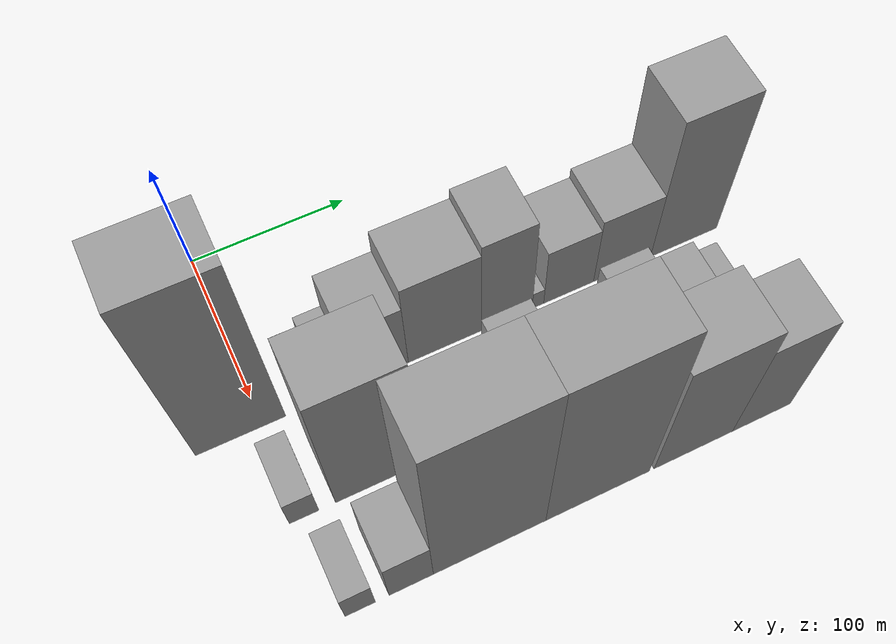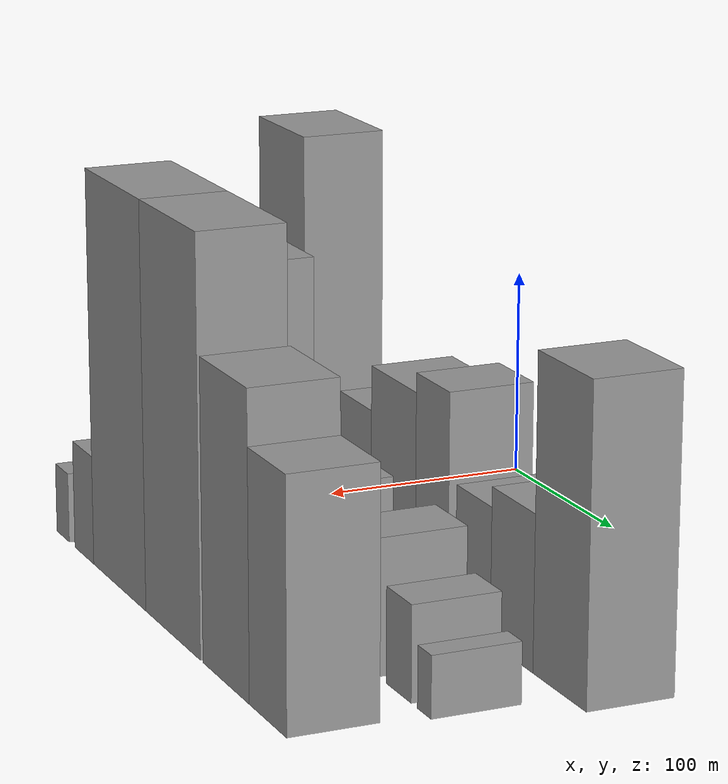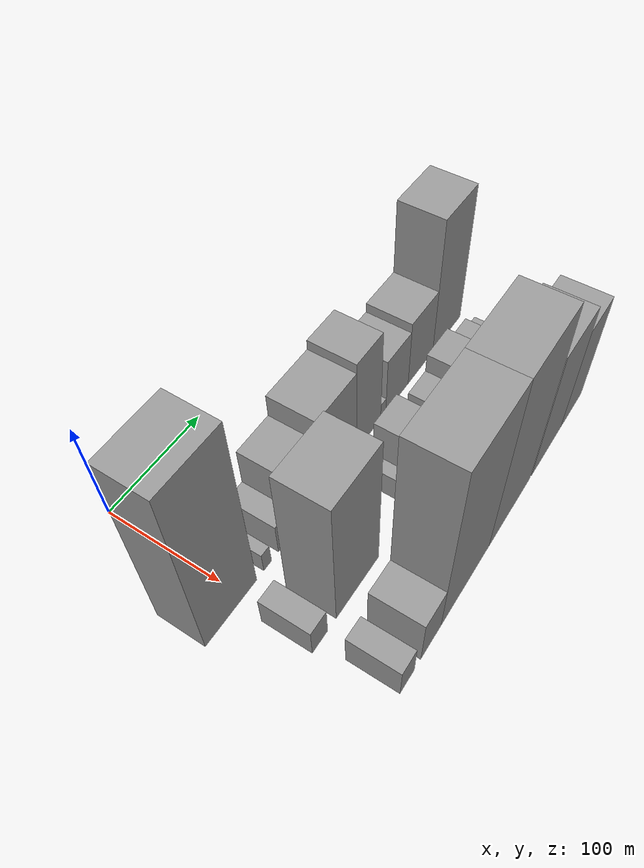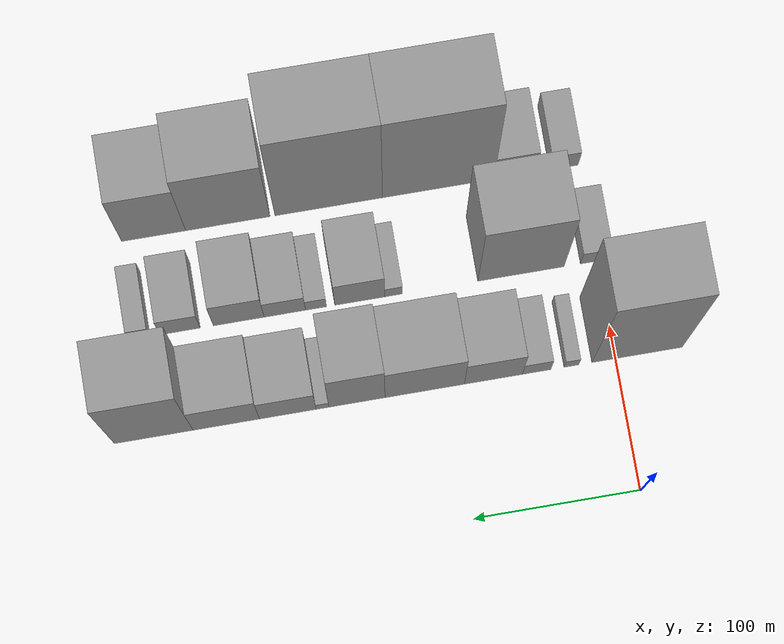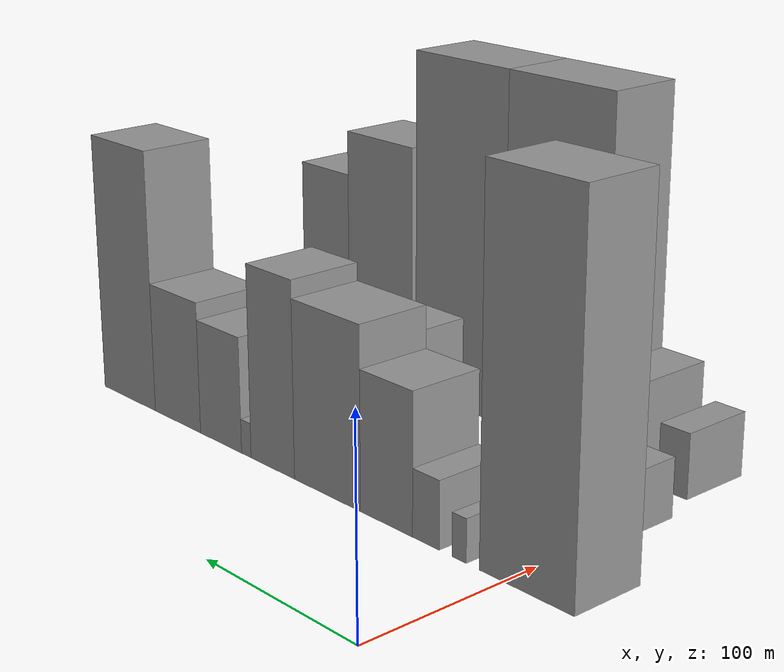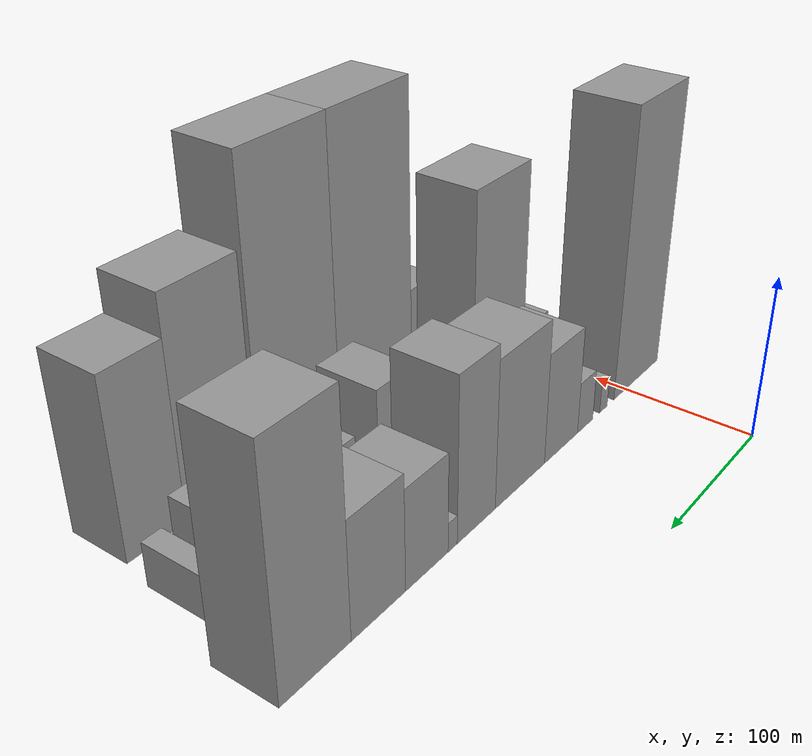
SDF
<sdf version="1.6">
 <world name="default">
  <model name="building_16">
   <static>1</static>
   <pose>100.0000 -13.0072 0 0.000000 0.000000 0.000000</pose>
   <link name="link">
    <pose>0 0 90.00 0 0 0</pose>
    <collision name="collision"><geometry><box><size>40.0000 54.8522 180.0000</size></box></geometry></collision>
    <visual name="visual">
     <cast_shadows>0</cast_shadows>
     <geometry><box><size>40.0000 54.8522 180.0000</size></box></geometry>
     <material>
      <script>
       <uri>model://grey_wall/materials/scripts</uri>
       <uri>model://grey_wall/materials/textures</uri>
       <name>vrc/grey_wall</name>
      </script>
     </material>
    </visual>
   </link>
  </model>
  <model name="building_17">
   <static>1</static>
   <pose>100.0000 26.8543 0 0.000000 0.000000 0.000000</pose>
   <link name="link">
    <pose>0 0 10.50 0 0 0</pose>
    <collision name="collision"><geometry><box><size>40.0000 8.8710 21.0000</size></box></geometry></collision>
    <visual name="visual">
     <cast_shadows>0</cast_shadows>
     <geometry><box><size>40.0000 8.8710 21.0000</size></box></geometry>
     <material>
      <script>
       <uri>model://grey_wall/materials/scripts</uri>
       <uri>model://grey_wall/materials/textures</uri>
       <name>vrc/grey_wall</name>
      </script>
     </material>
    </visual>
   </link>
  </model>
  <model name="building_18">
   <static>1</static>
   <pose>100.0000 47.9079 0 0.000000 0.000000 0.000000</pose>
   <link name="link">
    <pose>0 0 16.50 0 0 0</pose>
    <collision name="collision"><geometry><box><size>40.0000 17.2362 33.0000</size></box></geometry></collision>
    <visual name="visual">
     <cast_shadows>0</cast_shadows>
     <geometry><box><size>40.0000 17.2362 33.0000</size></box></geometry>
     <material>
      <script>
       <uri>model://grey_wall/materials/scripts</uri>
       <uri>model://grey_wall/materials/textures</uri>
       <name>vrc/grey_wall</name>
      </script>
     </material>
    </visual>
   </link>
  </model>
  <model name="building_19">
   <static>1</static>
   <pose>100.0000 74.0982 0 0.000000 0.000000 0.000000</pose>
   <link name="link">
    <pose>0 0 34.50 0 0 0</pose>
    <collision name="collision"><geometry><box><size>40.0000 35.1444 69.0000</size></box></geometry></collision>
    <visual name="visual">
     <cast_shadows>0</cast_shadows>
     <geometry><box><size>40.0000 35.1444 69.0000</size></box></geometry>
     <material>
      <script>
       <uri>model://grey_wall/materials/scripts</uri>
       <uri>model://grey_wall/materials/textures</uri>
       <name>vrc/grey_wall</name>
      </script>
     </material>
    </visual>
   </link>
  </model>
  <model name="building_20">
   <static>1</static>
   <pose>100.0000 115.5759 0 0.000000 0.000000 0.000000</pose>
   <link name="link">
    <pose>0 0 45.00 0 0 0</pose>
    <collision name="collision"><geometry><box><size>40.0000 47.8111 90.0000</size></box></geometry></collision>
    <visual name="visual">
     <cast_shadows>0</cast_shadows>
     <geometry><box><size>40.0000 47.8111 90.0000</size></box></geometry>
     <material>
      <script>
       <uri>model://grey_wall/materials/scripts</uri>
       <uri>model://grey_wall/materials/textures</uri>
       <name>vrc/grey_wall</name>
      </script>
     </material>
    </visual>
   </link>
  </model>
  <model name="building_21">
   <static>1</static>
   <pose>100.0000 156.3765 0 0.000000 0.000000 0.000000</pose>
   <link name="link">
    <pose>0 0 49.50 0 0 0</pose>
    <collision name="collision"><geometry><box><size>40.0000 33.7900 99.0000</size></box></geometry></collision>
    <visual name="visual">
     <cast_shadows>0</cast_shadows>
     <geometry><box><size>40.0000 33.7900 99.0000</size></box></geometry>
     <material>
      <script>
       <uri>model://grey_wall/materials/scripts</uri>
       <uri>model://grey_wall/materials/textures</uri>
       <name>vrc/grey_wall</name>
      </script>
     </material>
    </visual>
   </link>
  </model>
  <model name="building_22">
   <static>1</static>
   <pose>100.0000 177.1312 0 0.000000 0.000000 0.000000</pose>
   <link name="link">
    <pose>0 0 9.00 0 0 0</pose>
    <collision name="collision"><geometry><box><size>40.0000 7.7195 18.0000</size></box></geometry></collision>
    <visual name="visual">
     <cast_shadows>0</cast_shadows>
     <geometry><box><size>40.0000 7.7195 18.0000</size></box></geometry>
     <material>
      <script>
       <uri>model://grey_wall/materials/scripts</uri>
       <uri>model://grey_wall/materials/textures</uri>
       <name>vrc/grey_wall</name>
      </script>
     </material>
    </visual>
   </link>
  </model>
  <model name="building_23">
   <static>1</static>
   <pose>100.0000 198.0240 0 0.000000 0.000000 0.000000</pose>
   <link name="link">
    <pose>0 0 30.00 0 0 0</pose>
    <collision name="collision"><geometry><box><size>40.0000 34.0659 60.0000</size></box></geometry></collision>
    <visual name="visual">
     <cast_shadows>0</cast_shadows>
     <geometry><box><size>40.0000 34.0659 60.0000</size></box></geometry>
     <material>
      <script>
       <uri>model://grey_wall/materials/scripts</uri>
       <uri>model://grey_wall/materials/textures</uri>
       <name>vrc/grey_wall</name>
      </script>
     </material>
    </visual>
   </link>
  </model>
  <model name="building_24">
   <static>1</static>
   <pose>100.0000 234.9716 0 0.000000 0.000000 0.000000</pose>
   <link name="link">
    <pose>0 0 34.50 0 0 0</pose>
    <collision name="collision"><geometry><box><size>40.0000 39.8295 69.0000</size></box></geometry></collision>
    <visual name="visual">
     <cast_shadows>0</cast_shadows>
     <geometry><box><size>40.0000 39.8295 69.0000</size></box></geometry>
     <material>
      <script>
       <uri>model://grey_wall/materials/scripts</uri>
       <uri>model://grey_wall/materials/textures</uri>
       <name>vrc/grey_wall</name>
      </script>
     </material>
    </visual>
   </link>
  </model>
  <model name="building_25">
   <static>1</static>
   <pose>100.0000 278.4877 0 0.000000 0.000000 0.000000</pose>
   <link name="link">
    <pose>0 0 69.00 0 0 0</pose>
    <collision name="collision"><geometry><box><size>40.0000 47.2026 138.0000</size></box></geometry></collision>
    <visual name="visual">
     <cast_shadows>0</cast_shadows>
     <geometry><box><size>40.0000 47.2026 138.0000</size></box></geometry>
     <material>
      <script>
       <uri>model://grey_wall/materials/scripts</uri>
       <uri>model://grey_wall/materials/textures</uri>
       <name>vrc/grey_wall</name>
      </script>
     </material>
    </visual>
   </link>
  </model>
  <model name="building_52">
   <static>1</static>
   <pose>160.0000 1.5211 0 0.000000 0.000000 0.000000</pose>
   <link name="link">
    <pose>0 0 15.00 0 0 0</pose>
    <collision name="collision"><geometry><box><size>40.0000 17.5326 30.0000</size></box></geometry></collision>
    <visual name="visual">
     <cast_shadows>0</cast_shadows>
     <geometry><box><size>40.0000 17.5326 30.0000</size></box></geometry>
     <material>
      <script>
       <uri>model://grey_wall/materials/scripts</uri>
       <uri>model://grey_wall/materials/textures</uri>
       <name>vrc/grey_wall</name>
      </script>
     </material>
    </visual>
   </link>
  </model>
  <model name="building_53">
   <static>1</static>
   <pose>160.0000 46.5620 0 0.000000 0.000000 0.000000</pose>
   <link name="link">
    <pose>0 0 69.00 0 0 0</pose>
    <collision name="collision"><geometry><box><size>40.0000 52.5492 138.0000</size></box></geometry></collision>
    <visual name="visual">
     <cast_shadows>0</cast_shadows>
     <geometry><box><size>40.0000 52.5492 138.0000</size></box></geometry>
     <material>
      <script>
       <uri>model://grey_wall/materials/scripts</uri>
       <uri>model://grey_wall/materials/textures</uri>
       <name>vrc/grey_wall</name>
      </script>
     </material>
    </visual>
   </link>
  </model>
  <model name="building_54">
   <static>1</static>
   <pose>160.0000 124.0687 0 0.000000 0.000000 0.000000</pose>
   <link name="link">
    <pose>0 0 12.00 0 0 0</pose>
    <collision name="collision"><geometry><box><size>40.0000 10.8214 24.0000</size></box></geometry></collision>
    <visual name="visual">
     <cast_shadows>0</cast_shadows>
     <geometry><box><size>40.0000 10.8214 24.0000</size></box></geometry>
     <material>
      <script>
       <uri>model://grey_wall/materials/scripts</uri>
       <uri>model://grey_wall/materials/textures</uri>
       <name>vrc/grey_wall</name>
      </script>
     </material>
    </visual>
   </link>
  </model>
  <model name="building_55">
   <static>1</static>
   <pose>160.0000 144.5876 0 0.000000 0.000000 0.000000</pose>
   <link name="link">
    <pose>0 0 30.00 0 0 0</pose>
    <collision name="collision"><geometry><box><size>40.0000 30.2163 60.0000</size></box></geometry></collision>
    <visual name="visual">
     <cast_shadows>0</cast_shadows>
     <geometry><box><size>40.0000 30.2163 60.0000</size></box></geometry>
     <material>
      <script>
       <uri>model://grey_wall/materials/scripts</uri>
       <uri>model://grey_wall/materials/textures</uri>
       <name>vrc/grey_wall</name>
      </script>
     </material>
    </visual>
   </link>
  </model>
  <model name="building_56">
   <static>1</static>
   <pose>160.0000 171.0431 0 0.000000 0.000000 0.000000</pose>
   <link name="link">
    <pose>0 0 13.50 0 0 0</pose>
    <collision name="collision"><geometry><box><size>40.0000 12.6948 27.0000</size></box></geometry></collision>
    <visual name="visual">
     <cast_shadows>0</cast_shadows>
     <geometry><box><size>40.0000 12.6948 27.0000</size></box></geometry>
     <material>
      <script>
       <uri>model://grey_wall/materials/scripts</uri>
       <uri>model://grey_wall/materials/textures</uri>
       <name>vrc/grey_wall</name>
      </script>
     </material>
    </visual>
   </link>
  </model>
  <model name="building_57">
   <static>1</static>
   <pose>160.0000 189.9268 0 0.000000 0.000000 0.000000</pose>
   <link name="link">
    <pose>0 0 21.00 0 0 0</pose>
    <collision name="collision"><geometry><box><size>40.0000 25.0726 42.0000</size></box></geometry></collision>
    <visual name="visual">
     <cast_shadows>0</cast_shadows>
     <geometry><box><size>40.0000 25.0726 42.0000</size></box></geometry>
     <material>
      <script>
       <uri>model://grey_wall/materials/scripts</uri>
       <uri>model://grey_wall/materials/textures</uri>
       <name>vrc/grey_wall</name>
      </script>
     </material>
    </visual>
   </link>
  </model>
  <model name="building_58">
   <static>1</static>
   <pose>160.0000 217.8167 0 0.000000 0.000000 0.000000</pose>
   <link name="link">
    <pose>0 0 30.00 0 0 0</pose>
    <collision name="collision"><geometry><box><size>40.0000 30.7073 60.0000</size></box></geometry></collision>
    <visual name="visual">
     <cast_shadows>0</cast_shadows>
     <geometry><box><size>40.0000 30.7073 60.0000</size></box></geometry>
     <material>
      <script>
       <uri>model://grey_wall/materials/scripts</uri>
       <uri>model://grey_wall/materials/textures</uri>
       <name>vrc/grey_wall</name>
      </script>
     </material>
    </visual>
   </link>
  </model>
  <model name="building_59">
   <static>1</static>
   <pose>160.0000 253.3060 0 0.000000 0.000000 0.000000</pose>
   <link name="link">
    <pose>0 0 21.00 0 0 0</pose>
    <collision name="collision"><geometry><box><size>40.0000 24.2714 42.0000</size></box></geometry></collision>
    <visual name="visual">
     <cast_shadows>0</cast_shadows>
     <geometry><box><size>40.0000 24.2714 42.0000</size></box></geometry>
     <material>
      <script>
       <uri>model://grey_wall/materials/scripts</uri>
       <uri>model://grey_wall/materials/textures</uri>
       <name>vrc/grey_wall</name>
      </script>
     </material>
    </visual>
   </link>
  </model>
  <model name="building_60">
   <static>1</static>
   <pose>160.0000 277.8568 0 0.000000 0.000000 0.000000</pose>
   <link name="link">
    <pose>0 0 13.50 0 0 0</pose>
    <collision name="collision"><geometry><box><size>40.0000 12.8302 27.0000</size></box></geometry></collision>
    <visual name="visual">
     <cast_shadows>0</cast_shadows>
     <geometry><box><size>40.0000 12.8302 27.0000</size></box></geometry>
     <material>
      <script>
       <uri>model://grey_wall/materials/scripts</uri>
       <uri>model://grey_wall/materials/textures</uri>
       <name>vrc/grey_wall</name>
      </script>
     </material>
    </visual>
   </link>
  </model>
  <model name="building_88">
   <static>1</static>
   <pose>220.0000 9.4413 0 0.000000 0.000000 0.000000</pose>
   <link name="link">
    <pose>0 0 16.50 0 0 0</pose>
    <collision name="collision"><geometry><box><size>40.0000 17.5889 33.0000</size></box></geometry></collision>
    <visual name="visual">
     <cast_shadows>0</cast_shadows>
     <geometry><box><size>40.0000 17.5889 33.0000</size></box></geometry>
     <material>
      <script>
       <uri>model://grey_wall/materials/scripts</uri>
       <uri>model://grey_wall/materials/textures</uri>
       <name>vrc/grey_wall</name>
      </script>
     </material>
    </visual>
   </link>
  </model>
  <model name="building_89">
   <static>1</static>
   <pose>220.0000 39.3059 0 0.000000 0.000000 0.000000</pose>
   <link name="link">
    <pose>0 0 25.50 0 0 0</pose>
    <collision name="collision"><geometry><box><size>40.0000 26.1405 51.0000</size></box></geometry></collision>
    <visual name="visual">
     <cast_shadows>0</cast_shadows>
     <geometry><box><size>40.0000 26.1405 51.0000</size></box></geometry>
     <material>
      <script>
       <uri>model://grey_wall/materials/scripts</uri>
       <uri>model://grey_wall/materials/textures</uri>
       <name>vrc/grey_wall</name>
      </script>
     </material>
    </visual>
   </link>
  </model>
  <model name="building_90">
   <static>1</static>
   <pose>220.0000 86.4786 0 0.000000 0.000000 0.000000</pose>
   <link name="link">
    <pose>0 0 91.50 0 0 0</pose>
    <collision name="collision"><geometry><box><size>40.0000 68.2048 183.0000</size></box></geometry></collision>
    <visual name="visual">
     <cast_shadows>0</cast_shadows>
     <geometry><box><size>40.0000 68.2048 183.0000</size></box></geometry>
     <material>
      <script>
       <uri>model://grey_wall/materials/scripts</uri>
       <uri>model://grey_wall/materials/textures</uri>
       <name>vrc/grey_wall</name>
      </script>
     </material>
    </visual>
   </link>
  </model>
  <model name="building_91">
   <static>1</static>
   <pose>220.0000 153.3682 0 0.000000 0.000000 0.000000</pose>
   <link name="link">
    <pose>0 0 91.50 0 0 0</pose>
    <collision name="collision"><geometry><box><size>40.0000 65.5744 183.0000</size></box></geometry></collision>
    <visual name="visual">
     <cast_shadows>0</cast_shadows>
     <geometry><box><size>40.0000 65.5744 183.0000</size></box></geometry>
     <material>
      <script>
       <uri>model://grey_wall/materials/scripts</uri>
       <uri>model://grey_wall/materials/textures</uri>
       <name>vrc/grey_wall</name>
      </script>
     </material>
    </visual>
   </link>
  </model>
  <model name="building_92">
   <static>1</static>
   <pose>220.0000 214.8444 0 0.000000 0.000000 0.000000</pose>
   <link name="link">
    <pose>0 0 66.00 0 0 0</pose>
    <collision name="collision"><geometry><box><size>40.0000 51.3781 132.0000</size></box></geometry></collision>
    <visual name="visual">
     <cast_shadows>0</cast_shadows>
     <geometry><box><size>40.0000 51.3781 132.0000</size></box></geometry>
     <material>
      <script>
       <uri>model://grey_wall/materials/scripts</uri>
       <uri>model://grey_wall/materials/textures</uri>
       <name>vrc/grey_wall</name>
      </script>
     </material>
    </visual>
   </link>
  </model>
  <model name="building_93">
   <static>1</static>
   <pose>220.0000 259.9974 0 0.000000 0.000000 0.000000</pose>
   <link name="link">
    <pose>0 0 54.00 0 0 0</pose>
    <collision name="collision"><geometry><box><size>40.0000 38.9278 108.0000</size></box></geometry></collision>
    <visual name="visual">
     <cast_shadows>0</cast_shadows>
     <geometry><box><size>40.0000 38.9278 108.0000</size></box></geometry>
     <material>
      <script>
       <uri>model://grey_wall/materials/scripts</uri>
       <uri>model://grey_wall/materials/textures</uri>
       <name>vrc/grey_wall</name>
      </script>
     </material>
    </visual>
   </link>
  </model>
 </world>
</sdf>
